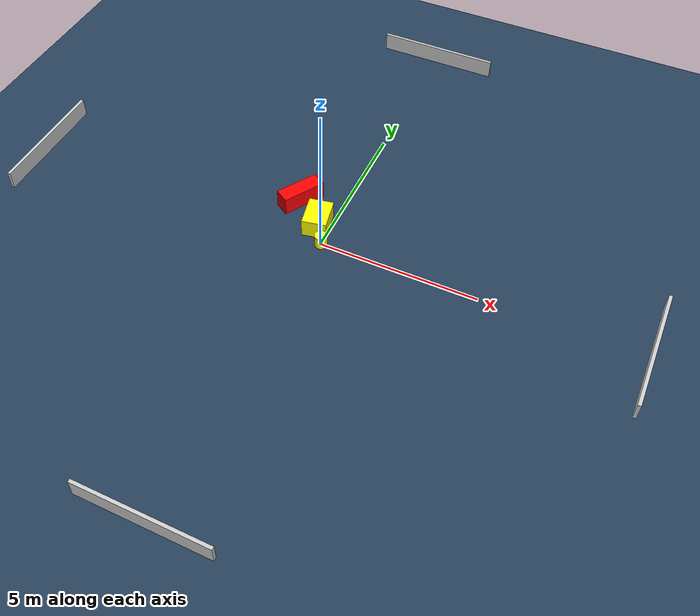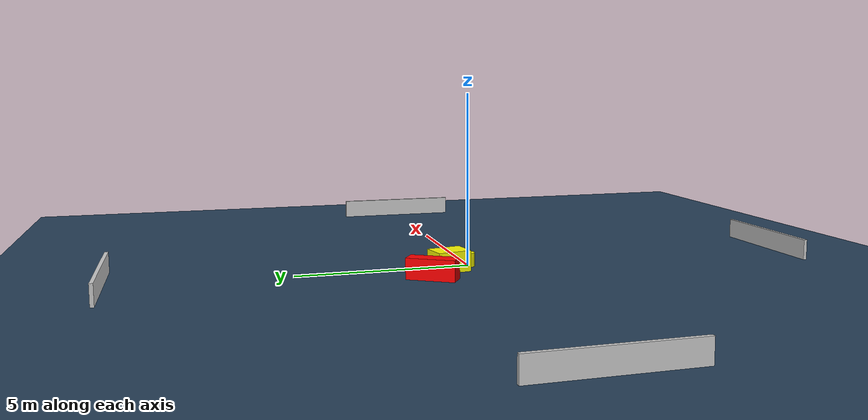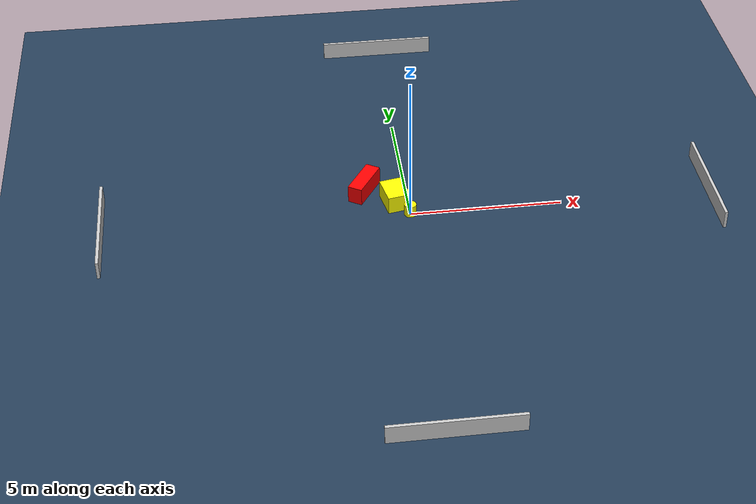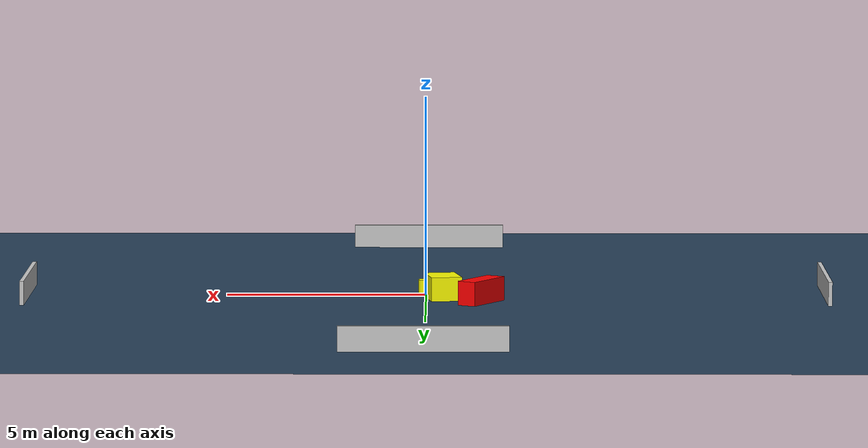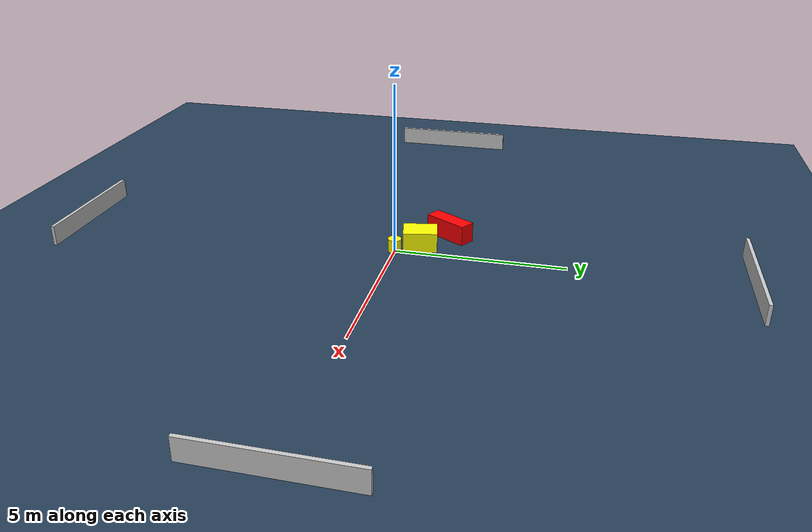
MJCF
<?xml version="1.0" ?>
<mujoco model="generated_environment">
  <option timestep="0.01" integrator="RK4" cone="elliptic"/>
  <default>
    <geom density="1"/>
  </default>
  <asset>
    <texture builtin="gradient" height="3072" name="skybox" rgb1="0.3 0.5 0.7" rgb2="0 0 0" type="skybox" width="512"/>
    <texture builtin="checker" height="300" name="groundplane" rgb1="0.2 0.3 0.4" rgb2="0.1 0.2 0.3" type="2d" width="300"/>
    <material name="groundplane" reflectance="0.2" texrepeat="5 5" texture="groundplane"/>
  </asset>
  <worldbody>
    <light dir="0 0 -1" directional="true" pos="0 0 1.5"/>
    <geom condim="3" friction="0.5 0.005 0.001" material="groundplane" name="floor" pos="0 0 0" size="0 0 0.05" type="plane"/>
    <body name="walls">
      <geom name="wall_1" condim="4" pos="-10.0 0.0 0.3" rgba="0.800000011920929 0.800000011920929 0.800000011920929 1.0" size="0.05 2.0 0.3" type="box"/>
      <geom name="wall_2" condim="4" pos="10.0 0.0 0.3" rgba="0.800000011920929 0.800000011920929 0.800000011920929 1.0" size="0.05 2.0 0.3" type="box"/>
      <geom name="wall_3" condim="4" pos="0.0 -10.0 0.3" rgba="0.800000011920929 0.800000011920929 0.800000011920929 1.0" size="2.0 0.05 0.3" type="box"/>
      <geom name="wall_4" condim="4" pos="0.0 10.0 0.3" rgba="0.800000011920929 0.800000011920929 0.800000011920929 1.0" size="2.0 0.05 0.3" type="box"/>
    </body>
    <body name="robot">
      <joint name="joint_x" type="slide" pos="0 0 0" axis="1 0 0"/>
      <joint name="joint_y" type="slide" pos="0 0 0" axis="0 1 0"/>
      <geom name="robot" type="cylinder" pos="0.0 0.0 0.2" size="0.2 0.2 0.0" mass="5.0" friction="1.0 0.005 0.0001" condim="4" rgba="1.0 1.0 0.0 1.0"/>
    </body>
    <body name="obstacle_1_movable">
      <geom name="obstacle_1_movable" condim="4" pos="-0.42200072937274496 0.676135013690307 0.3" euler="0 0 281.14465852339106" friction="0.0 0.005 0.001" rgba="1.0 1.0 0.0 1.0" size="0.5017801776020709 0.38370517350844957 0.3" type="box" mass="0.1"/>
      <joint type="free"/>
    </body>
    <body name="obstacle_2_static">
      <geom name="obstacle_2_static" condim="4" pos="-1.3688801727525934 1.40428195455473 0.3" euler="0 0 328.23444607322926" friction="0.0 0.005 0.001" rgba="1.0 0.0 0.0 1.0" size="0.24507330094622 0.6994841900559612 0.3" type="box"/>
    </body>
  </worldbody>
  <actuator>
    <motor name="actuator_x" joint="joint_x" gear="1" ctrlrange="-1 1"/>
    <motor name="actuator_y" joint="joint_y" gear="1" ctrlrange="-1 1"/>
  </actuator>
</mujoco>
